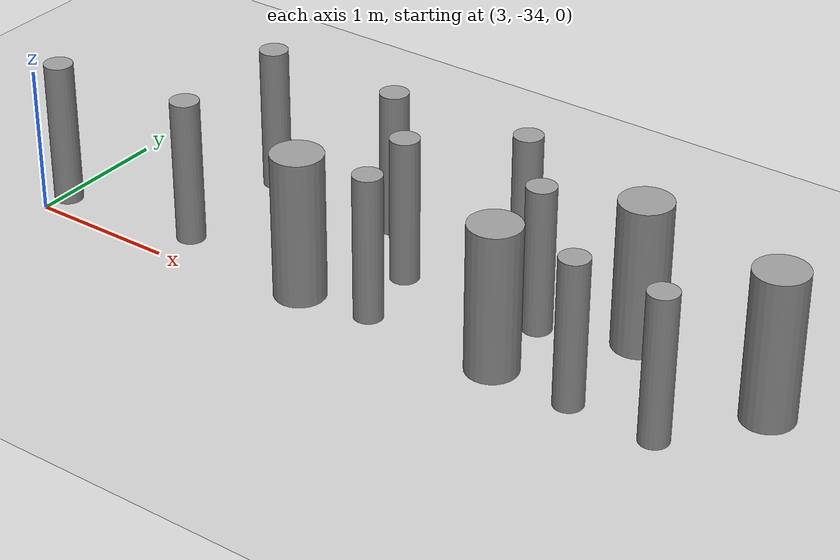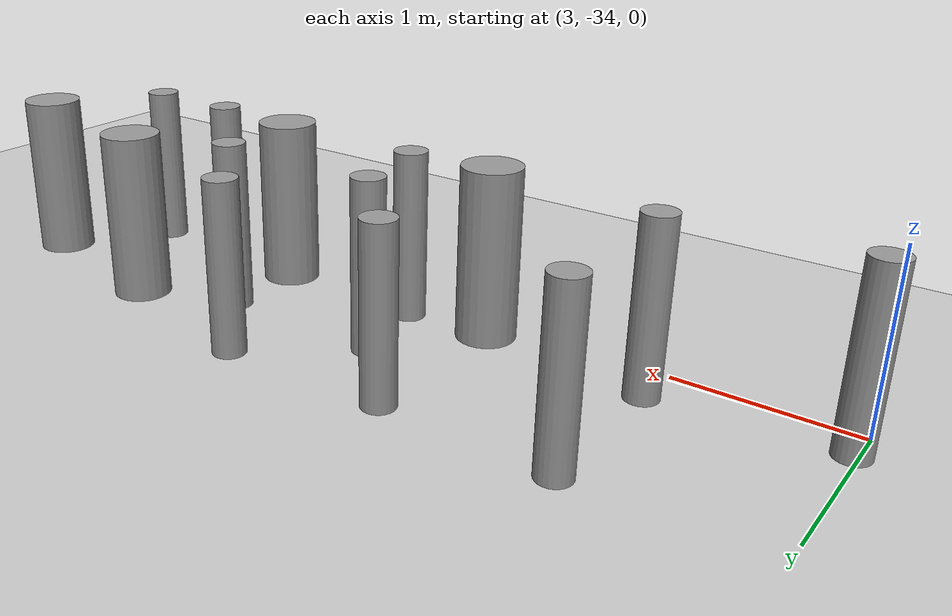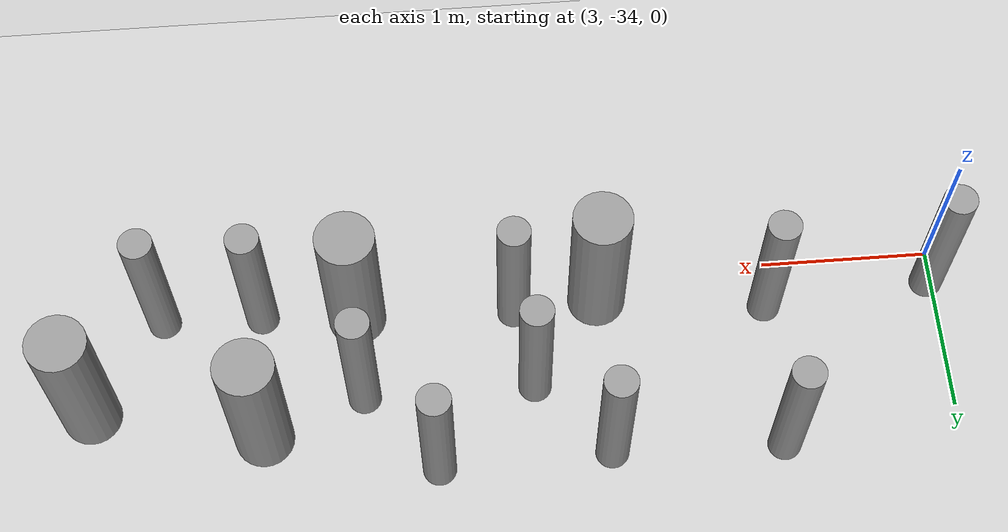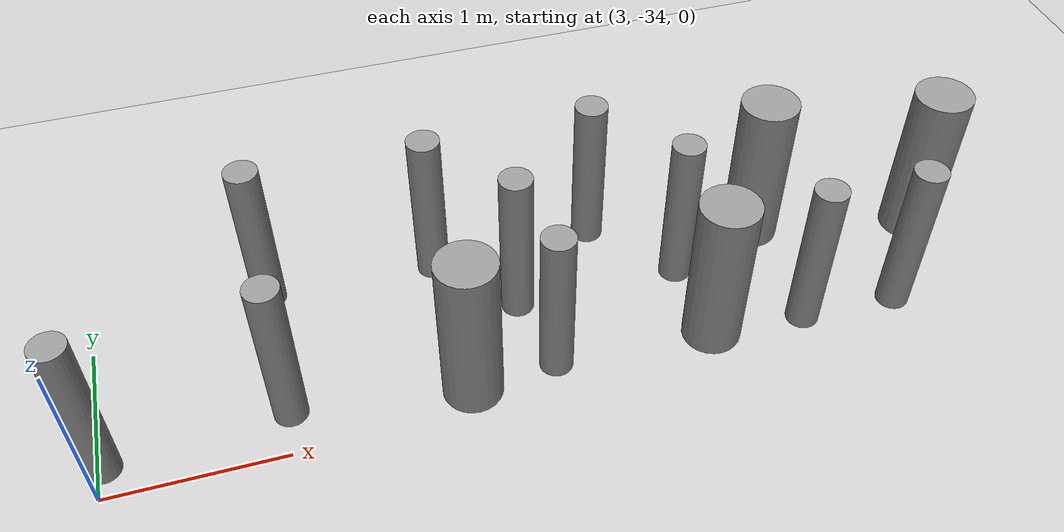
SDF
<sdf version="1.6">
 <world name="default">
  <model name="ground_plane">
   <static>1</static>
   <link name="link">
    <collision name="collision">
     <geometry><plane><normal>0 0 1</normal><size>100 100</size></plane></geometry>
     <surface><friction><ode><mu>100</mu><mu2>50</mu2></ode></friction></surface>
    </collision>
    <visual name="visual">
     <cast_shadows>0</cast_shadows>
     <geometry><plane><normal>0 0 1</normal><size>100 100</size></plane></geometry>
     <material>
      <script><uri>file://media/materials/scripts/gazebo.material</uri><name>Gazebo/Grey</name></script>
     </material>
    </visual>
   </link>
  </model>
  <model name="cyl_wall_clone_clone_3_clone_5">
   <link name="link_0">
    <pose>-2.73893 -0.366465 0 0 -0 0</pose>
    <inertial>
     <mass>0.0374993</mass>
     <inertia>
      <ixx>0.00321281</ixx>
      <ixy>0</ixy>
      <ixz>0</ixz>
      <iyy>0.00321281</iyy>
      <iyz>0</iyz>
      <izz>0.000175774</izz>
     </inertia>
    </inertial>
    <visual name="visual">
     <geometry><cylinder><radius>0.0968661</radius><length>1</length></cylinder></geometry>
     <material>
      <lighting>1</lighting>
      <script><uri>file://media/materials/scripts/gazebo.material</uri><name>Gazebo/Grey</name></script>
      <ambient>0.3 0.3 0.3 1</ambient>
      <diffuse>0.7 0.7 0.7 1</diffuse>
      <specular>0.01 0.01 0.01 1</specular>
      <emissive>0 0 0 1</emissive>
     </material>
    </visual>
    <collision name="collision">
     <geometry><cylinder><radius>0.096866</radius><length>1</length></cylinder></geometry>
     <surface>
      <friction>
       <ode><mu>1</mu><mu2>1</mu2><fdir1>0 0 0</fdir1><slip1>0</slip1><slip2>0</slip2></ode>
       <torsional>
        <coefficient>1</coefficient>
        <patch_radius>0</patch_radius>
        <surface_radius>0</surface_radius>
        <use_patch_radius>1</use_patch_radius>
        <ode><slip>0</slip></ode>
       </torsional>
      </friction>
      <bounce><restitution_coefficient>0</restitution_coefficient><threshold>1e+06</threshold></bounce>
      <contact>
       <collide_without_contact>0</collide_without_contact>
       <collide_without_contact_bitmask>1</collide_without_contact_bitmask>
       <collide_bitmask>1</collide_bitmask>
       <ode>
        <soft_cfm>0</soft_cfm>
        <soft_erp>0.2</soft_erp>
        <kp>1e+13</kp>
        <kd>1</kd>
        <max_vel>0.01</max_vel>
        <min_depth>0</min_depth>
       </ode>
       <bullet>
        <split_impulse>1</split_impulse>
        <split_impulse_penetration_threshold>-0.01</split_impulse_penetration_threshold>
        <soft_cfm>0</soft_cfm>
        <soft_erp>0.2</soft_erp>
        <kp>1e+13</kp>
        <kd>1</kd>
       </bullet>
      </contact>
     </surface>
    </collision>
   </link>
   <link name="link_0_clone">
    <pose>-1.73893 0.61877 0 0 -0 0</pose>
    <inertial>
     <mass>0.0374993</mass>
     <inertia>
      <ixx>0.00321281</ixx>
      <ixy>0</ixy>
      <ixz>0</ixz>
      <iyy>0.00321281</iyy>
      <iyz>0</iyz>
      <izz>0.000175774</izz>
     </inertia>
    </inertial>
    <visual name="visual">
     <geometry><cylinder><radius>0.0968661</radius><length>1</length></cylinder></geometry>
     <material>
      <lighting>1</lighting>
      <script><uri>file://media/materials/scripts/gazebo.material</uri><name>Gazebo/Grey</name></script>
      <ambient>0.3 0.3 0.3 1</ambient>
      <diffuse>0.7 0.7 0.7 1</diffuse>
      <specular>0.01 0.01 0.01 1</specular>
      <emissive>0 0 0 1</emissive>
      <shader type="pixel"/>
     </material>
    </visual>
    <collision name="collision">
     <geometry><cylinder><radius>0.096866</radius><length>1</length></cylinder></geometry>
     <surface>
      <friction>
       <ode><mu>1</mu><mu2>1</mu2><fdir1>0 0 0</fdir1><slip1>0</slip1><slip2>0</slip2></ode>
       <torsional>
        <coefficient>1</coefficient>
        <patch_radius>0</patch_radius>
        <surface_radius>0</surface_radius>
        <use_patch_radius>1</use_patch_radius>
        <ode><slip>0</slip></ode>
       </torsional>
      </friction>
      <bounce><restitution_coefficient>0</restitution_coefficient><threshold>1e+06</threshold></bounce>
      <contact>
       <collide_without_contact>0</collide_without_contact>
       <collide_without_contact_bitmask>1</collide_without_contact_bitmask>
       <collide_bitmask>1</collide_bitmask>
       <ode>
        <soft_cfm>0</soft_cfm>
        <soft_erp>0.2</soft_erp>
        <kp>1e+13</kp>
        <kd>1</kd>
        <max_vel>0.01</max_vel>
        <min_depth>0</min_depth>
       </ode>
       <bullet>
        <split_impulse>1</split_impulse>
        <split_impulse_penetration_threshold>-0.01</split_impulse_penetration_threshold>
        <soft_cfm>0</soft_cfm>
        <soft_erp>0.2</soft_erp>
        <kp>1e+13</kp>
        <kd>1</kd>
       </bullet>
      </contact>
     </surface>
    </collision>
   </link>
   <link name="link_0_clone_clone">
    <pose>-0.327073 0.143919 0 0 -0 0</pose>
    <inertial>
     <mass>0.0374993</mass>
     <inertia>
      <ixx>0.00321281</ixx>
      <ixy>0</ixy>
      <ixz>0</ixz>
      <iyy>0.00321281</iyy>
      <iyz>0</iyz>
      <izz>0.000175774</izz>
     </inertia>
    </inertial>
    <visual name="visual">
     <geometry><cylinder><radius>0.0968661</radius><length>1</length></cylinder></geometry>
     <material>
      <lighting>1</lighting>
      <script><uri>file://media/materials/scripts/gazebo.material</uri><name>Gazebo/Grey</name></script>
      <ambient>0.3 0.3 0.3 1</ambient>
      <diffuse>0.7 0.7 0.7 1</diffuse>
      <specular>0.01 0.01 0.01 1</specular>
      <emissive>0 0 0 1</emissive>
      <shader type="pixel"/>
     </material>
    </visual>
    <collision name="collision">
     <geometry><cylinder><radius>0.096866</radius><length>1</length></cylinder></geometry>
     <surface>
      <friction>
       <ode><mu>1</mu><mu2>1</mu2><fdir1>0 0 0</fdir1><slip1>0</slip1><slip2>0</slip2></ode>
       <torsional>
        <coefficient>1</coefficient>
        <patch_radius>0</patch_radius>
        <surface_radius>0</surface_radius>
        <use_patch_radius>1</use_patch_radius>
        <ode><slip>0</slip></ode>
       </torsional>
      </friction>
      <bounce><restitution_coefficient>0</restitution_coefficient><threshold>1e+06</threshold></bounce>
      <contact>
       <collide_without_contact>0</collide_without_contact>
       <collide_without_contact_bitmask>1</collide_without_contact_bitmask>
       <collide_bitmask>1</collide_bitmask>
       <ode>
        <soft_cfm>0</soft_cfm>
        <soft_erp>0.2</soft_erp>
        <kp>1e+13</kp>
        <kd>1</kd>
        <max_vel>0.01</max_vel>
        <min_depth>0</min_depth>
       </ode>
       <bullet>
        <split_impulse>1</split_impulse>
        <split_impulse_penetration_threshold>-0.01</split_impulse_penetration_threshold>
        <soft_cfm>0</soft_cfm>
        <soft_erp>0.2</soft_erp>
        <kp>1e+13</kp>
        <kd>1</kd>
       </bullet>
      </contact>
     </surface>
    </collision>
   </link>
   <link name="link_0_clone_clone_0">
    <pose>1.26107 -0.419359 0 0 -0 0</pose>
    <inertial>
     <mass>0.0374993</mass>
     <inertia>
      <ixx>0.00321281</ixx>
      <ixy>0</ixy>
      <ixz>0</ixz>
      <iyy>0.00321281</iyy>
      <iyz>0</iyz>
      <izz>0.000175774</izz>
     </inertia>
    </inertial>
    <visual name="visual">
     <geometry><cylinder><radius>0.0968661</radius><length>1</length></cylinder></geometry>
     <material>
      <lighting>1</lighting>
      <script><uri>file://media/materials/scripts/gazebo.material</uri><name>Gazebo/Grey</name></script>
      <ambient>0.3 0.3 0.3 1</ambient>
      <diffuse>0.7 0.7 0.7 1</diffuse>
      <specular>0.01 0.01 0.01 1</specular>
      <emissive>0 0 0 1</emissive>
      <shader type="pixel"/>
     </material>
    </visual>
    <collision name="collision">
     <geometry><cylinder><radius>0.096866</radius><length>1</length></cylinder></geometry>
     <surface>
      <friction>
       <ode><mu>1</mu><mu2>1</mu2><fdir1>0 0 0</fdir1><slip1>0</slip1><slip2>0</slip2></ode>
       <torsional>
        <coefficient>1</coefficient>
        <patch_radius>0</patch_radius>
        <surface_radius>0</surface_radius>
        <use_patch_radius>1</use_patch_radius>
        <ode><slip>0</slip></ode>
       </torsional>
      </friction>
      <bounce><restitution_coefficient>0</restitution_coefficient><threshold>1e+06</threshold></bounce>
      <contact>
       <collide_without_contact>0</collide_without_contact>
       <collide_without_contact_bitmask>1</collide_without_contact_bitmask>
       <collide_bitmask>1</collide_bitmask>
       <ode>
        <soft_cfm>0</soft_cfm>
        <soft_erp>0.2</soft_erp>
        <kp>1e+13</kp>
        <kd>1</kd>
        <max_vel>0.01</max_vel>
        <min_depth>0</min_depth>
       </ode>
       <bullet>
        <split_impulse>1</split_impulse>
        <split_impulse_penetration_threshold>-0.01</split_impulse_penetration_threshold>
        <soft_cfm>0</soft_cfm>
        <soft_erp>0.2</soft_erp>
        <kp>1e+13</kp>
        <kd>1</kd>
       </bullet>
      </contact>
     </surface>
    </collision>
   </link>
   <link name="link_0_clone_clone_1">
    <pose>-1.73893 -0.277168 0 0 -0 0</pose>
    <inertial>
     <mass>0.0374993</mass>
     <inertia>
      <ixx>0.00321281</ixx>
      <ixy>0</ixy>
      <ixz>0</ixz>
      <iyy>0.00321281</iyy>
      <iyz>0</iyz>
      <izz>0.000175774</izz>
     </inertia>
    </inertial>
    <visual name="visual">
     <geometry><cylinder><radius>0.0968661</radius><length>1</length></cylinder></geometry>
     <material>
      <lighting>1</lighting>
      <script><uri>file://media/materials/scripts/gazebo.material</uri><name>Gazebo/Grey</name></script>
      <ambient>0.3 0.3 0.3 1</ambient>
      <diffuse>0.7 0.7 0.7 1</diffuse>
      <specular>0.01 0.01 0.01 1</specular>
      <emissive>0 0 0 1</emissive>
      <shader type="pixel"/>
     </material>
    </visual>
    <collision name="collision">
     <geometry><cylinder><radius>0.096866</radius><length>1</length></cylinder></geometry>
     <surface>
      <friction>
       <ode><mu>1</mu><mu2>1</mu2><fdir1>0 0 0</fdir1><slip1>0</slip1><slip2>0</slip2></ode>
       <torsional>
        <coefficient>1</coefficient>
        <patch_radius>0</patch_radius>
        <surface_radius>0</surface_radius>
        <use_patch_radius>1</use_patch_radius>
        <ode><slip>0</slip></ode>
       </torsional>
      </friction>
      <bounce><restitution_coefficient>0</restitution_coefficient><threshold>1e+06</threshold></bounce>
      <contact>
       <collide_without_contact>0</collide_without_contact>
       <collide_without_contact_bitmask>1</collide_without_contact_bitmask>
       <collide_bitmask>1</collide_bitmask>
       <ode>
        <soft_cfm>0</soft_cfm>
        <soft_erp>0.2</soft_erp>
        <kp>1e+13</kp>
        <kd>1</kd>
        <max_vel>0.01</max_vel>
        <min_depth>0</min_depth>
       </ode>
       <bullet>
        <split_impulse>1</split_impulse>
        <split_impulse_penetration_threshold>-0.01</split_impulse_penetration_threshold>
        <soft_cfm>0</soft_cfm>
        <soft_erp>0.2</soft_erp>
        <kp>1e+13</kp>
        <kd>1</kd>
       </bullet>
      </contact>
     </surface>
    </collision>
   </link>
   <link name="link_0_clone_clone_2">
    <pose>-0.738934 0.593961 0 0 -0 0</pose>
    <inertial>
     <mass>0.0374993</mass>
     <inertia>
      <ixx>0.00321281</ixx>
      <ixy>0</ixy>
      <ixz>0</ixz>
      <iyy>0.00321281</iyy>
      <iyz>0</iyz>
      <izz>0.000175774</izz>
     </inertia>
    </inertial>
    <visual name="visual">
     <geometry><cylinder><radius>0.0968661</radius><length>1</length></cylinder></geometry>
     <material>
      <lighting>1</lighting>
      <script><uri>file://media/materials/scripts/gazebo.material</uri><name>Gazebo/Grey</name></script>
      <ambient>0.3 0.3 0.3 1</ambient>
      <diffuse>0.7 0.7 0.7 1</diffuse>
      <specular>0.01 0.01 0.01 1</specular>
      <emissive>0 0 0 1</emissive>
      <shader type="pixel"/>
     </material>
    </visual>
    <collision name="collision">
     <geometry><cylinder><radius>0.096866</radius><length>1</length></cylinder></geometry>
     <surface>
      <friction>
       <ode><mu>1</mu><mu2>1</mu2><fdir1>0 0 0</fdir1><slip1>0</slip1><slip2>0</slip2></ode>
       <torsional>
        <coefficient>1</coefficient>
        <patch_radius>0</patch_radius>
        <surface_radius>0</surface_radius>
        <use_patch_radius>1</use_patch_radius>
        <ode><slip>0</slip></ode>
       </torsional>
      </friction>
      <bounce><restitution_coefficient>0</restitution_coefficient><threshold>1e+06</threshold></bounce>
      <contact>
       <collide_without_contact>0</collide_without_contact>
       <collide_without_contact_bitmask>1</collide_without_contact_bitmask>
       <collide_bitmask>1</collide_bitmask>
       <ode>
        <soft_cfm>0</soft_cfm>
        <soft_erp>0.2</soft_erp>
        <kp>1e+13</kp>
        <kd>1</kd>
        <max_vel>0.01</max_vel>
        <min_depth>0</min_depth>
       </ode>
       <bullet>
        <split_impulse>1</split_impulse>
        <split_impulse_penetration_threshold>-0.01</split_impulse_penetration_threshold>
        <soft_cfm>0</soft_cfm>
        <soft_erp>0.2</soft_erp>
        <kp>1e+13</kp>
        <kd>1</kd>
       </bullet>
      </contact>
     </surface>
    </collision>
   </link>
   <link name="link_0_clone_clone_3">
    <pose>0.261066 0.624849 0 0 -0 0</pose>
    <inertial>
     <mass>0.0374993</mass>
     <inertia>
      <ixx>0.00321281</ixx>
      <ixy>0</ixy>
      <ixz>0</ixz>
      <iyy>0.00321281</iyy>
      <iyz>0</iyz>
      <izz>0.000175774</izz>
     </inertia>
    </inertial>
    <visual name="visual">
     <geometry><cylinder><radius>0.0968661</radius><length>1</length></cylinder></geometry>
     <material>
      <lighting>1</lighting>
      <script><uri>file://media/materials/scripts/gazebo.material</uri><name>Gazebo/Grey</name></script>
      <ambient>0.3 0.3 0.3 1</ambient>
      <diffuse>0.7 0.7 0.7 1</diffuse>
      <specular>0.01 0.01 0.01 1</specular>
      <emissive>0 0 0 1</emissive>
      <shader type="pixel"/>
     </material>
    </visual>
    <collision name="collision">
     <geometry><cylinder><radius>0.096866</radius><length>1</length></cylinder></geometry>
     <surface>
      <friction>
       <ode><mu>1</mu><mu2>1</mu2><fdir1>0 0 0</fdir1><slip1>0</slip1><slip2>0</slip2></ode>
       <torsional>
        <coefficient>1</coefficient>
        <patch_radius>0</patch_radius>
        <surface_radius>0</surface_radius>
        <use_patch_radius>1</use_patch_radius>
        <ode><slip>0</slip></ode>
       </torsional>
      </friction>
      <bounce><restitution_coefficient>0</restitution_coefficient><threshold>1e+06</threshold></bounce>
      <contact>
       <collide_without_contact>0</collide_without_contact>
       <collide_without_contact_bitmask>1</collide_without_contact_bitmask>
       <collide_bitmask>1</collide_bitmask>
       <ode>
        <soft_cfm>0</soft_cfm>
        <soft_erp>0.2</soft_erp>
        <kp>1e+13</kp>
        <kd>1</kd>
        <max_vel>0.01</max_vel>
        <min_depth>0</min_depth>
       </ode>
       <bullet>
        <split_impulse>1</split_impulse>
        <split_impulse_penetration_threshold>-0.01</split_impulse_penetration_threshold>
        <soft_cfm>0</soft_cfm>
        <soft_erp>0.2</soft_erp>
        <kp>1e+13</kp>
        <kd>1</kd>
       </bullet>
      </contact>
     </surface>
    </collision>
   </link>
   <link name="link_0_clone_clone_4">
    <pose>-0.239049 -0.353105 0 0 -0 0</pose>
    <inertial>
     <mass>0.0374993</mass>
     <inertia>
      <ixx>0.00321281</ixx>
      <ixy>0</ixy>
      <ixz>0</ixz>
      <iyy>0.00321281</iyy>
      <iyz>0</iyz>
      <izz>0.000175774</izz>
     </inertia>
    </inertial>
    <visual name="visual">
     <geometry><cylinder><radius>0.0968661</radius><length>1</length></cylinder></geometry>
     <material>
      <lighting>1</lighting>
      <script><uri>file://media/materials/scripts/gazebo.material</uri><name>Gazebo/Grey</name></script>
      <ambient>0.3 0.3 0.3 1</ambient>
      <diffuse>0.7 0.7 0.7 1</diffuse>
      <specular>0.01 0.01 0.01 1</specular>
      <emissive>0 0 0 1</emissive>
      <shader type="pixel"/>
     </material>
    </visual>
    <collision name="collision">
     <geometry><cylinder><radius>0.096866</radius><length>1</length></cylinder></geometry>
     <surface>
      <friction>
       <ode><mu>1</mu><mu2>1</mu2><fdir1>0 0 0</fdir1><slip1>0</slip1><slip2>0</slip2></ode>
       <torsional>
        <coefficient>1</coefficient>
        <patch_radius>0</patch_radius>
        <surface_radius>0</surface_radius>
        <use_patch_radius>1</use_patch_radius>
        <ode><slip>0</slip></ode>
       </torsional>
      </friction>
      <bounce><restitution_coefficient>0</restitution_coefficient><threshold>1e+06</threshold></bounce>
      <contact>
       <collide_without_contact>0</collide_without_contact>
       <collide_without_contact_bitmask>1</collide_without_contact_bitmask>
       <collide_bitmask>1</collide_bitmask>
       <ode>
        <soft_cfm>0</soft_cfm>
        <soft_erp>0.2</soft_erp>
        <kp>1e+13</kp>
        <kd>1</kd>
        <max_vel>0.01</max_vel>
        <min_depth>0</min_depth>
       </ode>
       <bullet>
        <split_impulse>1</split_impulse>
        <split_impulse_penetration_threshold>-0.01</split_impulse_penetration_threshold>
        <soft_cfm>0</soft_cfm>
        <soft_erp>0.2</soft_erp>
        <kp>1e+13</kp>
        <kd>1</kd>
       </bullet>
      </contact>
     </surface>
    </collision>
   </link>
   <link name="link_0_clone_clone_5">
    <pose>0.672792 0.143919 0 0 -0 0</pose>
    <inertial>
     <mass>0.0374993</mass>
     <inertia>
      <ixx>0.00321281</ixx>
      <ixy>0</ixy>
      <ixz>0</ixz>
      <iyy>0.00321281</iyy>
      <iyz>0</iyz>
      <izz>0.000175774</izz>
     </inertia>
    </inertial>
    <visual name="visual">
     <geometry><cylinder><radius>0.0968661</radius><length>1</length></cylinder></geometry>
     <material>
      <lighting>1</lighting>
      <script><uri>file://media/materials/scripts/gazebo.material</uri><name>Gazebo/Grey</name></script>
      <ambient>0.3 0.3 0.3 1</ambient>
      <diffuse>0.7 0.7 0.7 1</diffuse>
      <specular>0.01 0.01 0.01 1</specular>
      <emissive>0 0 0 1</emissive>
      <shader type="pixel"/>
     </material>
    </visual>
    <collision name="collision">
     <geometry><cylinder><radius>0.096866</radius><length>1</length></cylinder></geometry>
     <surface>
      <friction>
       <ode><mu>1</mu><mu2>1</mu2><fdir1>0 0 0</fdir1><slip1>0</slip1><slip2>0</slip2></ode>
       <torsional>
        <coefficient>1</coefficient>
        <patch_radius>0</patch_radius>
        <surface_radius>0</surface_radius>
        <use_patch_radius>1</use_patch_radius>
        <ode><slip>0</slip></ode>
       </torsional>
      </friction>
      <bounce><restitution_coefficient>0</restitution_coefficient><threshold>1e+06</threshold></bounce>
      <contact>
       <collide_without_contact>0</collide_without_contact>
       <collide_without_contact_bitmask>1</collide_without_contact_bitmask>
       <collide_bitmask>1</collide_bitmask>
       <ode>
        <soft_cfm>0</soft_cfm>
        <soft_erp>0.2</soft_erp>
        <kp>1e+13</kp>
        <kd>1</kd>
        <max_vel>0.01</max_vel>
        <min_depth>0</min_depth>
       </ode>
       <bullet>
        <split_impulse>1</split_impulse>
        <split_impulse_penetration_threshold>-0.01</split_impulse_penetration_threshold>
        <soft_cfm>0</soft_cfm>
        <soft_erp>0.2</soft_erp>
        <kp>1e+13</kp>
        <kd>1</kd>
       </bullet>
      </contact>
     </surface>
    </collision>
   </link>
   <link name="link_0_clone_clone_6">
    <pose>1.84596 -0.433423 0 0 -0 0</pose>
    <inertial>
     <mass>0.0374993</mass>
     <inertia>
      <ixx>0.00321281</ixx>
      <ixy>0</ixy>
      <ixz>0</ixz>
      <iyy>0.00321281</iyy>
      <iyz>0</iyz>
      <izz>0.000175774</izz>
     </inertia>
    </inertial>
    <visual name="visual">
     <geometry><cylinder><radius>0.0968661</radius><length>1</length></cylinder></geometry>
     <material>
      <lighting>1</lighting>
      <script><uri>file://media/materials/scripts/gazebo.material</uri><name>Gazebo/Grey</name></script>
      <ambient>0.3 0.3 0.3 1</ambient>
      <diffuse>0.7 0.7 0.7 1</diffuse>
      <specular>0.01 0.01 0.01 1</specular>
      <emissive>0 0 0 1</emissive>
      <shader type="pixel"/>
     </material>
    </visual>
    <collision name="collision">
     <geometry><cylinder><radius>0.096866</radius><length>1</length></cylinder></geometry>
     <surface>
      <friction>
       <ode><mu>1</mu><mu2>1</mu2><fdir1>0 0 0</fdir1><slip1>0</slip1><slip2>0</slip2></ode>
       <torsional>
        <coefficient>1</coefficient>
        <patch_radius>0</patch_radius>
        <surface_radius>0</surface_radius>
        <use_patch_radius>1</use_patch_radius>
        <ode><slip>0</slip></ode>
       </torsional>
      </friction>
      <bounce><restitution_coefficient>0</restitution_coefficient><threshold>1e+06</threshold></bounce>
      <contact>
       <collide_without_contact>0</collide_without_contact>
       <collide_without_contact_bitmask>1</collide_without_contact_bitmask>
       <collide_bitmask>1</collide_bitmask>
       <ode>
        <soft_cfm>0</soft_cfm>
        <soft_erp>0.2</soft_erp>
        <kp>1e+13</kp>
        <kd>1</kd>
        <max_vel>0.01</max_vel>
        <min_depth>0</min_depth>
       </ode>
       <bullet>
        <split_impulse>1</split_impulse>
        <split_impulse_penetration_threshold>-0.01</split_impulse_penetration_threshold>
        <soft_cfm>0</soft_cfm>
        <soft_erp>0.2</soft_erp>
        <kp>1e+13</kp>
        <kd>1</kd>
       </bullet>
      </contact>
     </surface>
    </collision>
   </link>
   <link name="link_1">
    <pose>-0.738934 -0.397931 0 0 -0 0</pose>
    <inertial>
     <mass>0.117398</mass>
     <inertia>
      <ixx>0.0106445</ixx>
      <ixy>0</ixy>
      <ixz>0</ixz>
      <iyy>0.0106445</iyy>
      <iyz>0</iyz>
      <izz>0.00172278</izz>
     </inertia>
    </inertial>
    <visual name="visual">
     <geometry><cylinder><radius>0.171317</radius><length>1</length></cylinder></geometry>
     <material>
      <lighting>1</lighting>
      <script><uri>file://media/materials/scripts/gazebo.material</uri><name>Gazebo/Grey</name></script>
      <ambient>0.3 0.3 0.3 1</ambient>
      <diffuse>0.7 0.7 0.7 1</diffuse>
      <specular>0.01 0.01 0.01 1</specular>
      <emissive>0 0 0 1</emissive>
     </material>
    </visual>
    <collision name="collision">
     <geometry><cylinder><radius>0.171317</radius><length>1</length></cylinder></geometry>
     <surface>
      <friction>
       <ode><mu>1</mu><mu2>1</mu2><fdir1>0 0 0</fdir1><slip1>0</slip1><slip2>0</slip2></ode>
       <torsional>
        <coefficient>1</coefficient>
        <patch_radius>0</patch_radius>
        <surface_radius>0</surface_radius>
        <use_patch_radius>1</use_patch_radius>
        <ode><slip>0</slip></ode>
       </torsional>
      </friction>
      <bounce><restitution_coefficient>0</restitution_coefficient><threshold>1e+06</threshold></bounce>
      <contact>
       <collide_without_contact>0</collide_without_contact>
       <collide_without_contact_bitmask>1</collide_without_contact_bitmask>
       <collide_bitmask>1</collide_bitmask>
       <ode>
        <soft_cfm>0</soft_cfm>
        <soft_erp>0.2</soft_erp>
        <kp>1e+13</kp>
        <kd>1</kd>
        <max_vel>0.01</max_vel>
        <min_depth>0</min_depth>
       </ode>
       <bullet>
        <split_impulse>1</split_impulse>
        <split_impulse_penetration_threshold>-0.01</split_impulse_penetration_threshold>
        <soft_cfm>0</soft_cfm>
        <soft_erp>0.2</soft_erp>
        <kp>1e+13</kp>
        <kd>1</kd>
       </bullet>
      </contact>
     </surface>
    </collision>
   </link>
   <link name="link_1_clone">
    <pose>0.697784 -0.380861 0 0 -0 0</pose>
    <inertial>
     <mass>0.117398</mass>
     <inertia>
      <ixx>0.0106445</ixx>
      <ixy>0</ixy>
      <ixz>0</ixz>
      <iyy>0.0106445</iyy>
      <iyz>0</iyz>
      <izz>0.00172278</izz>
     </inertia>
    </inertial>
    <visual name="visual">
     <geometry><cylinder><radius>0.171317</radius><length>1</length></cylinder></geometry>
     <material>
      <lighting>1</lighting>
      <script><uri>file://media/materials/scripts/gazebo.material</uri><name>Gazebo/Grey</name></script>
      <ambient>0.3 0.3 0.3 1</ambient>
      <diffuse>0.7 0.7 0.7 1</diffuse>
      <specular>0.01 0.01 0.01 1</specular>
      <emissive>0 0 0 1</emissive>
      <shader type="pixel"/>
     </material>
    </visual>
    <collision name="collision">
     <geometry><cylinder><radius>0.171317</radius><length>1</length></cylinder></geometry>
     <surface>
      <friction>
       <ode><mu>1</mu><mu2>1</mu2><fdir1>0 0 0</fdir1><slip1>0</slip1><slip2>0</slip2></ode>
       <torsional>
        <coefficient>1</coefficient>
        <patch_radius>0</patch_radius>
        <surface_radius>0</surface_radius>
        <use_patch_radius>1</use_patch_radius>
        <ode><slip>0</slip></ode>
       </torsional>
      </friction>
      <bounce><restitution_coefficient>0</restitution_coefficient><threshold>1e+06</threshold></bounce>
      <contact>
       <collide_without_contact>0</collide_without_contact>
       <collide_without_contact_bitmask>1</collide_without_contact_bitmask>
       <collide_bitmask>1</collide_bitmask>
       <ode>
        <soft_cfm>0</soft_cfm>
        <soft_erp>0.2</soft_erp>
        <kp>1e+13</kp>
        <kd>1</kd>
        <max_vel>0.01</max_vel>
        <min_depth>0</min_depth>
       </ode>
       <bullet>
        <split_impulse>1</split_impulse>
        <split_impulse_penetration_threshold>-0.01</split_impulse_penetration_threshold>
        <soft_cfm>0</soft_cfm>
        <soft_erp>0.2</soft_erp>
        <kp>1e+13</kp>
        <kd>1</kd>
       </bullet>
      </contact>
     </surface>
    </collision>
   </link>
   <link name="link_1_clone_0">
    <pose>1.26107 0.358974 0 0 -0 0</pose>
    <inertial>
     <mass>0.117398</mass>
     <inertia>
      <ixx>0.0106445</ixx>
      <ixy>0</ixy>
      <ixz>0</ixz>
      <iyy>0.0106445</iyy>
      <iyz>0</iyz>
      <izz>0.00172278</izz>
     </inertia>
    </inertial>
    <visual name="visual">
     <geometry><cylinder><radius>0.171317</radius><length>1</length></cylinder></geometry>
     <material>
      <lighting>1</lighting>
      <script><uri>file://media/materials/scripts/gazebo.material</uri><name>Gazebo/Grey</name></script>
      <ambient>0.3 0.3 0.3 1</ambient>
      <diffuse>0.7 0.7 0.7 1</diffuse>
      <specular>0.01 0.01 0.01 1</specular>
      <emissive>0 0 0 1</emissive>
      <shader type="pixel"/>
     </material>
    </visual>
    <collision name="collision">
     <geometry><cylinder><radius>0.171317</radius><length>1</length></cylinder></geometry>
     <surface>
      <friction>
       <ode><mu>1</mu><mu2>1</mu2><fdir1>0 0 0</fdir1><slip1>0</slip1><slip2>0</slip2></ode>
       <torsional>
        <coefficient>1</coefficient>
        <patch_radius>0</patch_radius>
        <surface_radius>0</surface_radius>
        <use_patch_radius>1</use_patch_radius>
        <ode><slip>0</slip></ode>
       </torsional>
      </friction>
      <bounce><restitution_coefficient>0</restitution_coefficient><threshold>1e+06</threshold></bounce>
      <contact>
       <collide_without_contact>0</collide_without_contact>
       <collide_without_contact_bitmask>1</collide_without_contact_bitmask>
       <collide_bitmask>1</collide_bitmask>
       <ode>
        <soft_cfm>0</soft_cfm>
        <soft_erp>0.2</soft_erp>
        <kp>1e+13</kp>
        <kd>1</kd>
        <max_vel>0.01</max_vel>
        <min_depth>0</min_depth>
       </ode>
       <bullet>
        <split_impulse>1</split_impulse>
        <split_impulse_penetration_threshold>-0.01</split_impulse_penetration_threshold>
        <soft_cfm>0</soft_cfm>
        <soft_erp>0.2</soft_erp>
        <kp>1e+13</kp>
        <kd>1</kd>
       </bullet>
      </contact>
     </surface>
    </collision>
   </link>
   <link name="link_1_clone_1">
    <pose>2.26107 0.143919 0 0 -0 0</pose>
    <inertial>
     <mass>0.117398</mass>
     <inertia>
      <ixx>0.0106445</ixx>
      <ixy>0</ixy>
      <ixz>0</ixz>
      <iyy>0.0106445</iyy>
      <iyz>0</iyz>
      <izz>0.00172278</izz>
     </inertia>
    </inertial>
    <visual name="visual">
     <geometry><cylinder><radius>0.171317</radius><length>1</length></cylinder></geometry>
     <material>
      <lighting>1</lighting>
      <script><uri>file://media/materials/scripts/gazebo.material</uri><name>Gazebo/Grey</name></script>
      <ambient>0.3 0.3 0.3 1</ambient>
      <diffuse>0.7 0.7 0.7 1</diffuse>
      <specular>0.01 0.01 0.01 1</specular>
      <emissive>0 0 0 1</emissive>
      <shader type="pixel"/>
     </material>
    </visual>
    <collision name="collision">
     <geometry><cylinder><radius>0.171317</radius><length>1</length></cylinder></geometry>
     <surface>
      <friction>
       <ode><mu>1</mu><mu2>1</mu2><fdir1>0 0 0</fdir1><slip1>0</slip1><slip2>0</slip2></ode>
       <torsional>
        <coefficient>1</coefficient>
        <patch_radius>0</patch_radius>
        <surface_radius>0</surface_radius>
        <use_patch_radius>1</use_patch_radius>
        <ode><slip>0</slip></ode>
       </torsional>
      </friction>
      <bounce><restitution_coefficient>0</restitution_coefficient><threshold>1e+06</threshold></bounce>
      <contact>
       <collide_without_contact>0</collide_without_contact>
       <collide_without_contact_bitmask>1</collide_without_contact_bitmask>
       <collide_bitmask>1</collide_bitmask>
       <ode>
        <soft_cfm>0</soft_cfm>
        <soft_erp>0.2</soft_erp>
        <kp>1e+13</kp>
        <kd>1</kd>
        <max_vel>0.01</max_vel>
        <min_depth>0</min_depth>
       </ode>
       <bullet>
        <split_impulse>1</split_impulse>
        <split_impulse_penetration_threshold>-0.01</split_impulse_penetration_threshold>
        <soft_cfm>0</soft_cfm>
        <soft_erp>0.2</soft_erp>
        <kp>1e+13</kp>
        <kd>1</kd>
       </bullet>
      </contact>
     </surface>
    </collision>
   </link>
   <static>1</static>
   <pose>5.77132 -33.4422 0.5 0 -0 0</pose>
  </model>
 </world>
</sdf>
